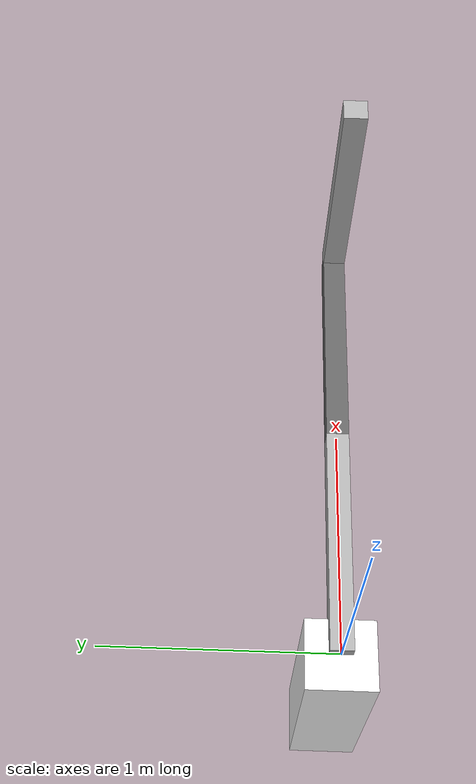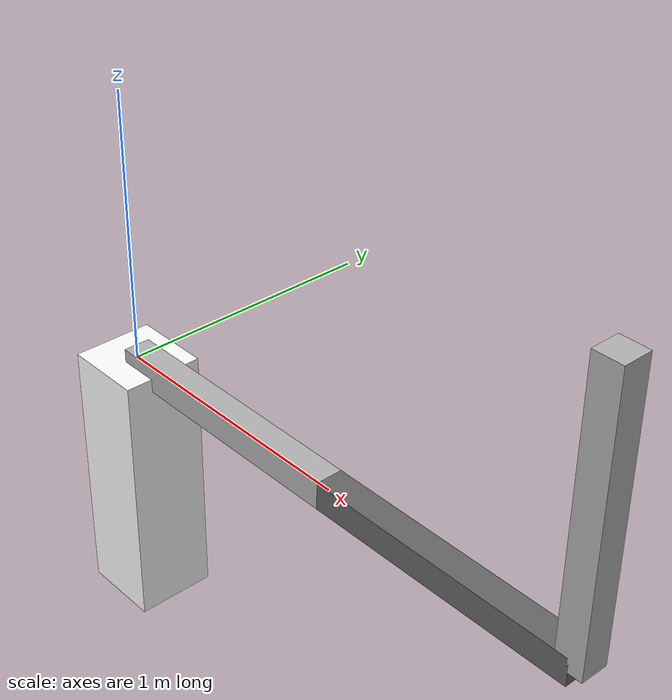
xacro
<?xml version="1.0"?>
<robot xmlns:xacro="http://www.ros.org/wiki/xacro" name="scara">
  <material name="black">
      <color rgba="0.0 0.0 0.0 1.0"/>
  </material>

  <material name="dark">
    <color rgba="0.3 0.3 0.3 1.0"/>
  </material>
  <material name="light_black">
    <color rgba="0.4 0.4 0.4 1.0"/>
  </material>

  <material name="blue">
    <color rgba="0.0 0.0 0.8 1.0"/>
  </material>

  <material name="green">
    <color rgba="0.0 0.8 0.0 1.0"/>
  </material>

  <material name="grey">
    <color rgba="0.7 0.7 0.7 1.0"/>
  </material>

  <material name="orange">
    <color rgba="${255/255} ${108/255} ${10/255} 1.0"/>
  </material>

  <material name="brown">
    <color rgba="${222/255} ${207/255} ${195/255} 1.0"/>
  </material>

  <material name="red">
    <color rgba="0.8 0.0 0.0 1.0"/>
  </material>

  <material name="white">
    <color rgba="1.0 1.0 1.0 1.0"/>
  </material>

  <link name="base_link">
     <visual>
      <geometry>
        <box size="0.3 0.3 1.0"/>
      </geometry>
      <origin rpy="0 0 0" xyz="0 0 -0.5"/>
      <material name="white"/>
    </visual>
    <collision>
      <geometry>
        <box size="0.3 0.3 1.0"/>
      </geometry>
    </collision>
  </link>

  <link name="link_1">
       <visual>
      <geometry>
        <box size="1.0 0.1 0.1"/>
      </geometry>
      <origin rpy="0 0 0" xyz="0.5 0 0"/>
      <material name="grey"/>
    </visual>
    <collision>
      <geometry>
        <box size="1.0 0.1 0.1"/>
      </geometry>
    </collision>
  </link>

  <link name="link_2">
       <visual>
      <geometry>
        <box size="1.0 0.1 0.1"/>
      </geometry>
      <origin rpy="0 0 0" xyz="0.5 0 0"/>
      <material name="light_black"/>
    </visual>
    <collision>
      <geometry>
        <box size="1.0 0.1 0.1"/>
      </geometry>
    </collision>
  </link>

  <link name="link_3">
       <visual>
      <geometry>
        <box size="1.0 0.1 0.1"/>
      </geometry>
      <origin rpy="0 1.57057 0" xyz="0 0 0.5"/>
      <material name="grey"/>
    </visual>
    <collision>
      <geometry>
        <box size="1.0 0.1 0.1"/>
      </geometry>
    </collision>
  </link>

  <joint name="link1_to_base" type="revolute">

    <parent link="base_link"/>

    <child link="link_1"/>

    <origin xyz="0 0 0"/>

    <axis xyz="0 0 1" />

    <limit effort="100" velocity="0.1" lower="-3.14" upper="3.14"/>
  </joint>

  <joint name="link2_to_link1" type="revolute">
    <parent link="link_1"/>
    <child link="link_2"/>
    <origin xyz="1 0 0"/>
    <axis xyz="0 0 1" />
    <limit effort="100" velocity="0.1" lower="-3.14" upper="3.14"/>
  </joint>

  <joint name="link3_to_link2" type="prismatic">
    <parent link="link_2"/>
    <child link="link_3"/>

    <origin xyz="1 0 0"/>
    <axis xyz="0 0 -1" />
    <limit effort="100" velocity="0.1" lower="0" upper="1"/>
  </joint>
</robot>
